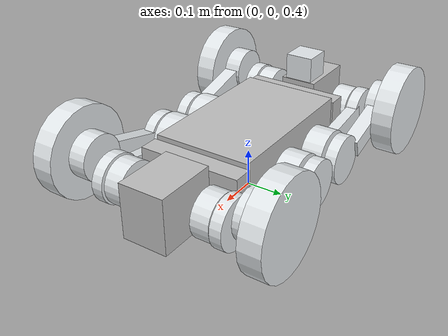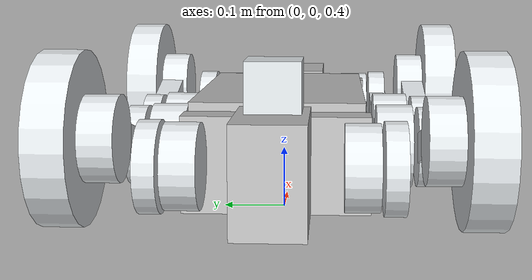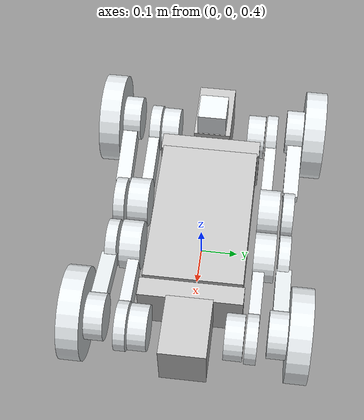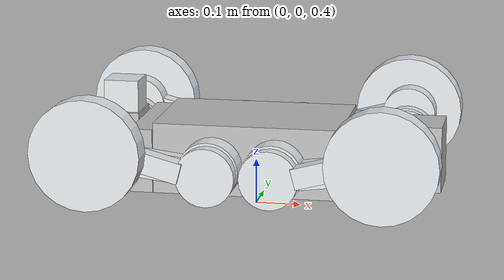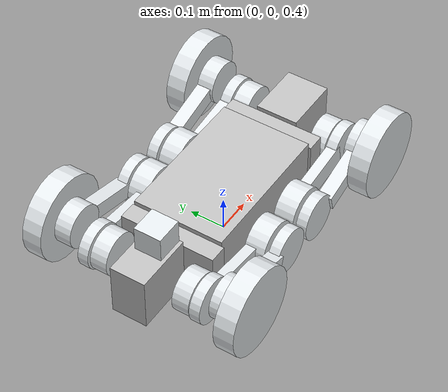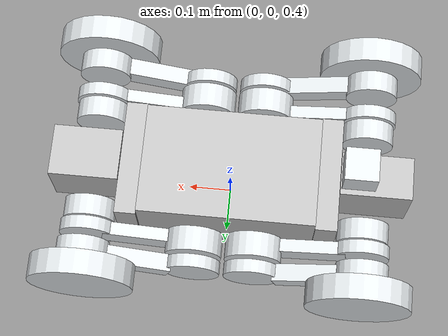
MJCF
<mujoco model="轮足狗机器人v3">
  <compiler angle="radian" meshdir="meshes"/>
  <option timestep="0.001" iterations="50" solver="PGS" gravity="0 0 -9.81">
    <flag frictionloss="enable" sensor="enable"/>
  </option>
  <worldbody>
    <light directional="true" diffuse="0.8 0.8 0.8" specular="0.3 0.3 0.3" pos="0 0 5" dir="0 0 -1" />
    <geom name="robot_ground" type="plane" size="0 0 1" condim="4" conaffinity="15" contype="0" rgba="0.8 0.8 0.8 0" friction="1.0 0.5 0.5"/>
    <body name="trunk" pos="0 0 0.45">
      <joint name="root" type="free" />
      <inertial pos="-0.00111 0.00718 0.07632" mass="18.69147" fullinertia="0.24077 0.63159 0.58481 -0.00158 0.00277 -0.00895" />
      <site name="imu" pos="0 0 0" size="0.01"/>
      <!-- Front camera for person detection -->
      <camera name="front_camera" pos="0.35 0 0.15" xyaxes="0 -1 0 0 0 1" fovy="60"/>
      <geom size="0.205 0.129 0.0775" pos="0 0.00124 0.07541" type="box" rgba="0.752941 0.752941 0.752941 1" />
      <geom size="0.025 0.135 0.07" pos="0.23 0 0.07" type="box" rgba="0.752941 0.752941 0.752941 1" />
      <geom size="0.025 0.135 0.07" pos="-0.23 0 0.07" type="box" rgba="0.752941 0.752941 0.752941 1" />
      <geom size="0.08 0.06 0.072" pos="0.335 0 0.08" type="box" rgba="0.752941 0.752941 0.752941 1" />
      <geom size="0.0825 0.05 0.075" pos="-0.3375 0 0.08" type="box" rgba="0.752941 0.752941 0.752941 1" />
      <geom size="0.0384 0.0384 0.04005" pos="-0.29638 -0.0012453 0.1849" quat="-3.67321e-06 0 0 1" type="box" rgba="0.898039 0.917647 0.929412 1" />
      <body name="fr_hip_Link" pos="0.2395 -0.065 0.08065">
        <inertial pos="0.06964 -0.04836 0.00073" quat="0.625515 0.616922 0.338061 0.337421" mass="1.78126" diaginertia="0.0173549 0.0163714 0.00282375" />
        <joint name="fr_hip_joint" pos="0 0 0" axis="-1 0 0" range="-0.41 0.41"  class="leg_joint_param" actuatorfrcrange="-120 120"/>
        <geom size="0.06 0.024" pos="0.07752 -0.05564 0.00083" quat="0.707105 0.707108 0 0" type="cylinder" rgba="0.898039 0.917647 0.929412 1" />
        <body name="fr_thigh_Link" pos="0.078 -0.0795 0">
          <inertial pos="-0.19519 -0.02855 -0.01131" quat="0.4815 0.451865 0.516848 0.544833" mass="2.40982" diaginertia="0.12237 0.120515 0.00342445" />
          <joint name="fr_thigh_joint" pos="0 0 0" axis="0 1 0" range="-3.14 0"  class="leg_joint_param" actuatorfrcrange="-120 120"/>
          <geom size="0.064 0.015" pos="0 -0.0195 0" quat="0.707105 0.707108 0 0" type="cylinder" rgba="0.898039 0.917647 0.929412 1" />
          <geom size="0.09 0.015 0.03" pos="-0.125 -0.02059 -0.01001" quat="0.997888 0 -0.0649542 0" type="box" rgba="0.898039 0.917647 0.929412 1" />
          <geom size="0.0655 0.028" pos="-0.2485 -0.032 -0.0135" quat="0.707105 0.707108 0 0" type="cylinder" rgba="0.898039 0.917647 0.929412 1" />
          <body name="fr_calf_Link" pos="-0.24954 -0.057 -0.01515">
            <inertial pos="0.17266 -0.02895 0.04224" quat="0.582691 0.473615 0.397387 0.527488" mass="1.89384" diaginertia="0.0857582 0.0849173 0.0023945" />
            <joint name="fr_calf_joint" pos="0 0 0" axis="0 1 0" range="0 3.14"  class="leg_joint_param" actuatorfrcrange="-120 120"/>
            <geom size="0.0635 0.015" pos="0 -0.02653 0" quat="0.707105 0.707108 0 0" type="cylinder" rgba="0.898039 0.917647 0.929412 1" />
            <geom size="0.09 0.02 0.0225" pos="0.14 -0.02903 0.0305" quat="0.991445 0 -0.130526 0" type="box" rgba="0.898039 0.917647 0.929412 1" />
            <geom size="0.06 0.0275" pos="0.249 -0.02903 0.0531" quat="0.707105 0.707108 0 0" type="cylinder" rgba="0.898039 0.917647 0.929412 1" />
            <body name="fr_foot_Link" pos="0.24443 -0.061 0.0525">
              <inertial pos="0.00146 -0.01336 -0.00634" quat="0.713042 -0.0388899 0.00283165 0.700036" mass="0.32377" diaginertia="0.00122196 0.000719831 0.000708212" />
              <joint name="fr_foot_joint" limited="false" pos="0 0 0" axis="0 1 0"  class="leg_joint_param" actuatorfrcrange="-60 60"/>
              <geom size="0.12 0.028085" pos="0 -0.01631 0" quat="0.707105 0.707108 0 0" type="cylinder" rgba="0.898039 0.917647 0.929412 1" />
            </body>
          </body>
        </body>
      </body>
      <body name="fl_hip_Link" pos="0.2395 0.065 0.08065">
        <inertial pos="0.06964 0.04836 -0.00073" quat="0.338061 0.337421 0.625515 0.616922" mass="1.78126" diaginertia="0.0173549 0.0163714 0.00282375" />
        <joint name="fl_hip_joint" pos="0 0 0" axis="-1 0 0" range="-0.41 0.41"  class="leg_joint_param" actuatorfrcrange="-120 120"/>
        <geom size="0.06 0.024" pos="0.07752 0.05564 0.00083" quat="0.707105 0.707108 0 0" type="cylinder" rgba="0.898039 0.917647 0.929412 1" />
        <body name="fl_thigh_Link" pos="0.078 0.0795 0">
          <inertial pos="-0.19484 0.02855 -0.01176" quat="0.542469 0.519007 0.447927 0.48551" mass="2.40982" diaginertia="0.121966 0.120079 0.00347509" />
          <joint name="fl_thigh_joint" pos="0 0 0" axis="0 -1 0" range="0 3.14"  class="leg_joint_param" actuatorfrcrange="-120 120"/>
          <geom size="0.064 0.015" pos="0 0.0195 0" quat="0.707105 0.707108 0 0" type="cylinder" rgba="0.898039 0.917647 0.929412 1" />
          <geom size="0.09 0.015 0.03" pos="-0.125 0.02059 -0.01001" quat="0.997888 0 -0.0649542 0" type="box" rgba="0.898039 0.917647 0.929412 1" />
          <geom size="0.0655 0.028" pos="-0.2485 0.032 -0.0135" quat="0.707105 0.707108 0 0" type="cylinder" rgba="0.898039 0.917647 0.929412 1" />
          <body name="fl_calf_Link" pos="-0.24954 0.057 -0.01515">
            <inertial pos="0.17384 0.02895 0.03735" quat="0.52142 0.405052 0.481468 0.576405" mass="1.89384" diaginertia="0.0858075 0.0849699 0.00239256" />
            <joint name="fl_calf_joint" pos="0 0 0" axis="0 -1 0" range="-3.14 0"  class="leg_joint_param" actuatorfrcrange="-120 120"/>
            <geom size="0.0635 0.015" pos="0 0.02653 0" quat="0.707105 0.707108 0 0" type="cylinder" rgba="0.898039 0.917647 0.929412 1" />
            <geom size="0.09 0.02 0.0225" pos="0.14 0.02903 0.0305" quat="0.991445 0 -0.130526 0" type="box" rgba="0.898039 0.917647 0.929412 1" />
            <geom size="0.06 0.0275" pos="0.249 0.02903 0.0531" quat="0.707105 0.707108 0 0" type="cylinder" rgba="0.898039 0.917647 0.929412 1" />
            <body name="fl_foot_Link" pos="0.24443 0.061 0.0525">
              <inertial pos="0 0.01336 0" quat="0.707107 0 0 0.707107" mass="0.32377" diaginertia="0.00121 0.00071 0.00071" />
              <joint name="fl_foot_joint" limited="false" pos="0 0 0" axis="0 -1 0"  class="leg_joint_param" actuatorfrcrange="-60 60"/>
              <geom size="0.12 0.028085" pos="0 0.01631 0" quat="0.707105 0.707108 0 0" type="cylinder" rgba="0.898039 0.917647 0.929412 1" />
            </body>
          </body>
        </body>
      </body>
      <body name="rr_hip_Link" pos="-0.2395 -0.065 0.08065">
        <inertial pos="-0.06964 -0.04836 -0.00073" quat="0.337421 0.338061 0.616922 0.625515" mass="1.78126" diaginertia="0.0173549 0.0163714 0.00282375" />
        <joint name="rr_hip_joint" pos="0 0 0" axis="1 0 0" range="-0.41 0.41"  class="leg_joint_param" actuatorfrcrange="-120 120"/>
        <geom size="0.06 0.024" pos="-0.07752 -0.05564 0.00083" quat="0.707105 0.707108 0 0" type="cylinder" rgba="0.898039 0.917647 0.929412 1" />
        <body name="rr_thigh_Link" pos="-0.078 -0.0795 0">
          <inertial pos="0.19473 -0.02855 -0.01335" quat="0.51663 0.544751 0.487118 0.446157" mass="2.40982" diaginertia="0.121968 0.12008 0.00347229" />
          <joint name="rr_thigh_joint" pos="0 0 0" axis="0 1 0" range="0 3.14"  class="leg_joint_param" actuatorfrcrange="-120 120"/>
          <geom size="0.064 0.015" pos="0 -0.0195 0" quat="0.707105 0.707108 0 0" type="cylinder" rgba="0.898039 0.917647 0.929412 1" />
          <geom size="0.09 0.015 0.03" pos="0.125 -0.02059 -0.01001" quat="0.997888 0 0.0649542 0" type="box" rgba="0.898039 0.917647 0.929412 1" />
          <geom size="0.0655 0.028" pos="0.2485 -0.032 -0.0135" quat="0.707105 0.707108 0 0" type="cylinder" rgba="0.898039 0.917647 0.929412 1" />
          <body name="rr_calf_Link" pos="0.24954 -0.057 -0.01515">
            <inertial pos="-0.17353 -0.02895 0.03877" quat="0.401946 0.524283 0.577237 0.479963" mass="1.89384" diaginertia="0.0858076 0.0849665 0.00239596" />
            <joint name="rr_calf_joint" pos="0 0 0" axis="0 1 0" range="-6.28 0"  class="leg_joint_param" actuatorfrcrange="-120 120"/>
            <geom size="0.0635 0.015" pos="0 -0.02653 0" quat="0.707105 0.707108 0 0" type="cylinder" rgba="0.898039 0.917647 0.929412 1" />
            <geom size="0.09 0.02 0.0225" pos="-0.14 -0.02903 0.0305" quat="0.991445 0 0.130526 0" type="box" rgba="0.898039 0.917647 0.929412 1" />
            <geom size="0.06 0.0275" pos="-0.249 -0.02903 0.0531" quat="0.707105 0.707108 0 0" type="cylinder" rgba="0.898039 0.917647 0.929412 1" />
            <body name="rr_foot_Link" pos="-0.24443 -0.061 0.0525">
              <inertial pos="0 -0.01336 0" quat="0.707107 0 0 0.707107" mass="0.32377" diaginertia="0.00121 0.00071 0.00071" />
              <joint name="rr_foot_joint" limited="false" pos="0 0 0" axis="0 1 0"  class="leg_joint_param" actuatorfrcrange="-60 60"/>
              <geom size="0.12 0.028085" pos="0 -0.01631 0" quat="0.707105 0.707108 0 0" type="cylinder" rgba="0.898039 0.917647 0.929412 1" />
            </body>
          </body>
        </body>
      </body>
      <body name="rl_hip_Link" pos="-0.2395 0.065 0.08065">
        <inertial pos="-0.0696 0.04836 0.00075" quat="0.616925 0.625523 0.337421 0.338041" mass="1.78126" diaginertia="0.0173387 0.0163514 0.00282991" />
        <joint name="rl_hip_joint" pos="0 0 0" axis="1 0 0" range="-0.41 0.41"  class="leg_joint_param" actuatorfrcrange="-120 120"/>
        <geom size="0.06 0.024" pos="-0.07752 0.05564 0.00083" quat="0.707105 0.707108 0 0" type="cylinder" rgba="0.898039 0.917647 0.929412 1" />
        <body name="rl_thigh_Link" pos="-0.078 0.0795 0">
          <inertial pos="0.19519 0.02855 -0.01131" quat="0.451865 0.4815 0.544833 0.516848" mass="2.40982" diaginertia="0.12237 0.120515 0.00342445" />
          <joint name="rl_thigh_joint" pos="0 0 0" axis="0 -1 0" range="-3.14 0"  class="leg_joint_param" actuatorfrcrange="-120 120"/>
          <geom size="0.064 0.015" pos="0 0.0195 0" quat="0.707105 0.707108 0 0" type="cylinder" rgba="0.898039 0.917647 0.929412 1" />
          <geom size="0.09 0.015 0.03" pos="0.125 0.02059 -0.01001" quat="0.997888 0 0.0649542 0" type="box" rgba="0.898039 0.917647 0.929412 1" />
          <geom size="0.0655 0.028" pos="0.2485 0.032 -0.0135" quat="0.707105 0.707108 0 0" type="cylinder" rgba="0.898039 0.917647 0.929412 1" />
          <body name="rl_calf_Link" pos="0.24954 0.057 -0.01515">
            <inertial pos="-0.17385 0.02895 0.03733" quat="0.478974 0.57966 0.517737 0.408077" mass="1.89384" diaginertia="0.0858096 0.0849658 0.00239458" />
            <joint name="rl_calf_joint" pos="0 0 0" axis="0 -1 0" range="0 6.28"  class="leg_joint_param" actuatorfrcrange="-120 120"/>
            <geom size="0.0635 0.015" pos="0 0.02653 0" quat="0.707105 0.707108 0 0" type="cylinder" rgba="0.898039 0.917647 0.929412 1" />
            <geom size="0.09 0.02 0.0225" pos="-0.14 0.02903 0.0305" quat="0.991445 0 0.130526 0" type="box" rgba="0.898039 0.917647 0.929412 1" />
            <geom size="0.06 0.0275" pos="-0.249 0.02903 0.0531" quat="0.707105 0.707108 0 0" type="cylinder" rgba="0.898039 0.917647 0.929412 1" />
            <body name="rl_foot_Link" pos="-0.24443 0.061 0.0525">
              <inertial pos="0 0.01336 0" quat="0.707107 0 0 0.707107" mass="0.32377" diaginertia="0.00121 0.00071 0.00071" />
              <joint name="rl_foot_joint" limited="false" pos="0 0 0" axis="0 -1 0"  class="leg_joint_param" actuatorfrcrange="-60 60"/>
              <geom size="0.12 0.028085" pos="0 0.01631 0" quat="0.707105 0.707108 0 0" type="cylinder" rgba="0.898039 0.917647 0.929412 1" />
            </body>
          </body>
        </body>
      </body>
    </body>
  </worldbody>
  <visual>
    <global offwidth="1280" offheight="720" />
  </visual>
  <default>
    <joint limited="true"/>
    <motor ctrllimited="true"/>
    <geom condim="4" contype="1" conaffinity="15" solref="0.001 2" friction="0.9 0.2 0.2"/>
    <equality solref="0.001 2"/>
    <default class="leg_joint_param">
      <joint damping="0.01" frictionloss="0.01" armature="0.01"/>
    </default>
  </default>
  <asset>
    <texture type="skybox" builtin="gradient" rgb1="0.3 0.5 0.7" rgb2="0.0 0.0 0.0" width="512" height="512" />
    <texture name="robot_grid" type="2d" builtin="checker" rgb1="0.8 0.8 0.8" rgb2="0.6 0.6 0.6" width="256" height="256" />
    <material name="robot_grid" texture="robot_grid" texrepeat="8 8" reflectance="0.1" />
  </asset>
  <!-- IMU 传感器 -->
  <sensor>
    <framequat name="orientation" objtype="site" objname="imu"/>
    <gyro name="angular-velocity" site="imu"/>
  </sensor>

  <!-- Position actuators: MuJoCo PD, ctrl=目标角度, kp/kv 与 brainstem inferKp 一致 -->
  <!-- Policy clamp_action() 已限制范围, ctrlrange 放宽不截断 policy 输出 -->
  <actuator>
    <position joint="fr_hip_joint"   name="fr_hip"   kp="65"  kv="5"  ctrlrange="-1.0 1.0"   forcerange="-120 120"/>
    <position joint="fr_thigh_joint" name="fr_thigh" kp="95"  kv="5"  ctrlrange="-3.5 3.5"   forcerange="-120 120"/>
    <position joint="fr_calf_joint"  name="fr_calf"  kp="120" kv="5"  ctrlrange="-3.5 3.5"   forcerange="-120 120"/>
    <position joint="fl_hip_joint"   name="fl_hip"   kp="65"  kv="5"  ctrlrange="-1.0 1.0"   forcerange="-120 120"/>
    <position joint="fl_thigh_joint" name="fl_thigh" kp="95"  kv="5"  ctrlrange="-3.5 3.5"   forcerange="-120 120"/>
    <position joint="fl_calf_joint"  name="fl_calf"  kp="120" kv="5"  ctrlrange="-3.5 3.5"   forcerange="-120 120"/>
    <position joint="rr_hip_joint"   name="rr_hip"   kp="65"  kv="5"  ctrlrange="-1.0 1.0"   forcerange="-120 120"/>
    <position joint="rr_thigh_joint" name="rr_thigh" kp="95"  kv="5"  ctrlrange="-3.5 3.5"   forcerange="-120 120"/>
    <position joint="rr_calf_joint"  name="rr_calf"  kp="120" kv="5"  ctrlrange="-7.0 7.0"   forcerange="-120 120"/>
    <position joint="rl_hip_joint"   name="rl_hip"   kp="65"  kv="5"  ctrlrange="-1.0 1.0"   forcerange="-120 120"/>
    <position joint="rl_thigh_joint" name="rl_thigh" kp="95"  kv="5"  ctrlrange="-3.5 3.5"   forcerange="-120 120"/>
    <position joint="rl_calf_joint"  name="rl_calf"  kp="120" kv="5"  ctrlrange="-7.0 7.0"   forcerange="-120 120"/>
    <position joint="fr_foot_joint"  name="fr_foot"  kp="30"  kv="2"  ctrlrange="-1.0 1.0"   forcerange="-60 60"/>
    <position joint="fl_foot_joint"  name="fl_foot"  kp="30"  kv="2"  ctrlrange="-1.0 1.0"   forcerange="-60 60"/>
    <position joint="rr_foot_joint"  name="rr_foot"  kp="30"  kv="2"  ctrlrange="-1.0 1.0"   forcerange="-60 60"/>
    <position joint="rl_foot_joint"  name="rl_foot"  kp="30"  kv="2"  ctrlrange="-1.0 1.0"   forcerange="-60 60"/>
  </actuator>
</mujoco>
